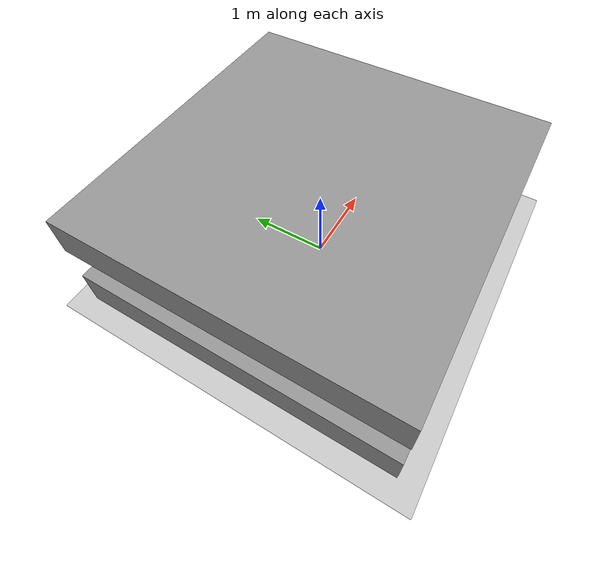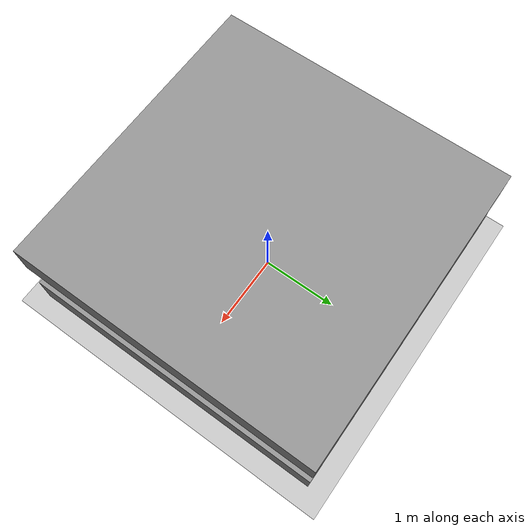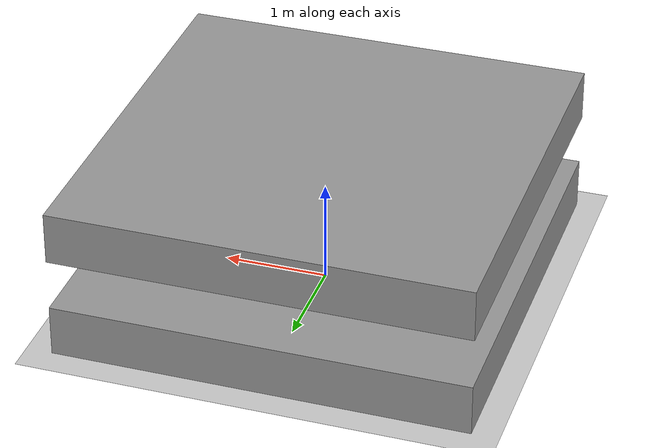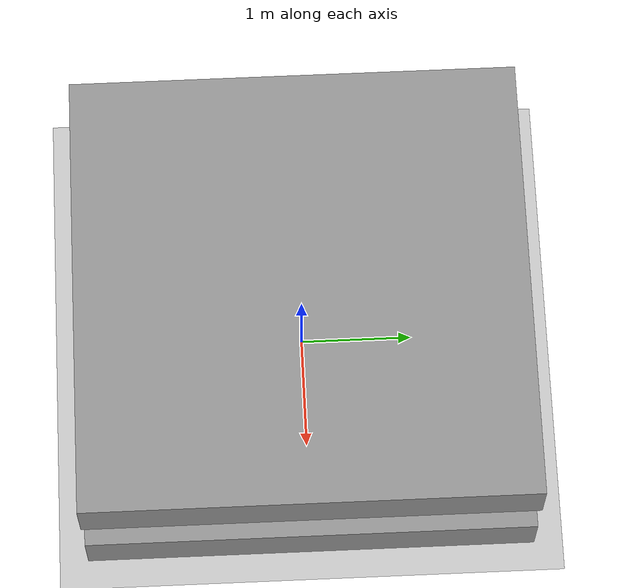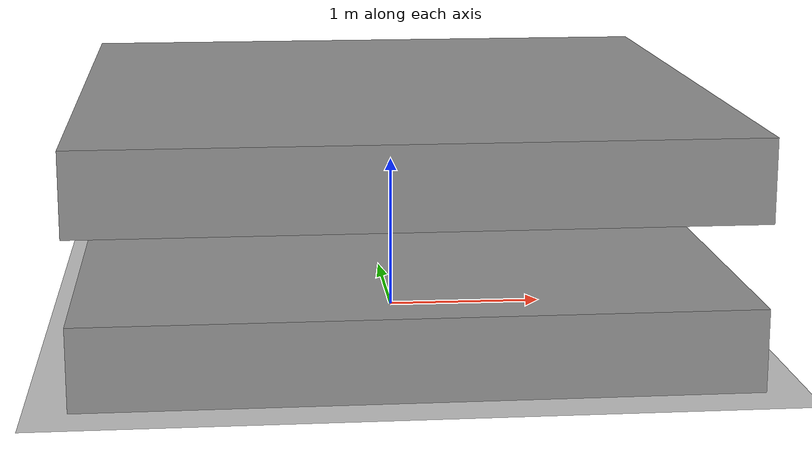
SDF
<sdf version='1.5'>
  <world name='default'>
    <!-- include sun and ground plane -->
    <include><uri>model://sun</uri></include>
    <include><uri>model://ground_plane</uri></include>

    <model name="sensor_box">
      <static>true</static>
      <link name="link">
        <pose>0 0 0.251  0 0 0</pose>
        <collision name="collision">
          <geometry>
            <box>
              <size>4 4 0.5</size>
            </box>
          </geometry>
        </collision>
        <visual name="visual">
          <geometry>
            <box>
              <size>4 4 0.5</size>
            </box>
          </geometry>
          <material><script>
            <uri>file://media/materials/scripts/gazebo.material</uri>
            <name>Gazebo/Grey</name>
          </script></material>
        </visual>
        <collision name="collision2">
          <pose>0 0 1 0 0 0</pose>
          <geometry>
            <box>
              <size>4 4 0.5</size>
            </box>
          </geometry>
        </collision>
        <visual name="visual2">
          <pose>0 0 1 0 0 0</pose>
          <geometry>
            <box>
              <size>4 4 0.5</size>
            </box>
          </geometry>
          <material><script>
            <uri>file://media/materials/scripts/gazebo.material</uri>
            <name>Gazebo/Grey</name>
          </script></material>
        </visual>
        <sensor name="box_contact" type="contact">
          <always_on>true</always_on>
          <update_rate>1000</update_rate>
          <contact>
            <collision>collision</collision>
          </contact>
        </sensor>
        <sensor name="box_contact2" type="contact">
          <always_on>true</always_on>
          <update_rate>1000</update_rate>
          <contact>
            <collision>collision2</collision>
          </contact>
        </sensor>
      </link>
    </model>

  </world>
</sdf>
